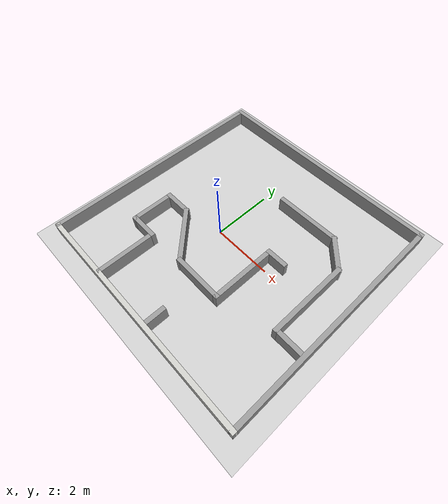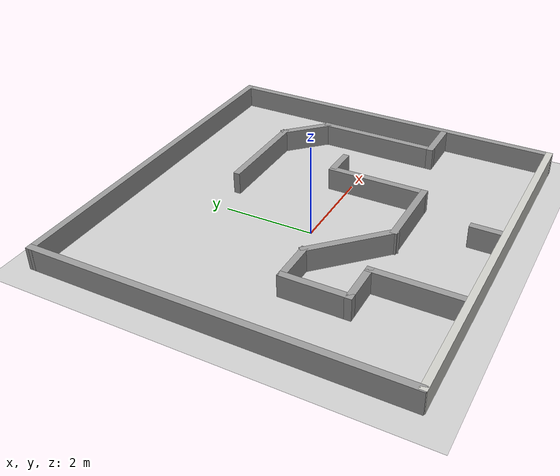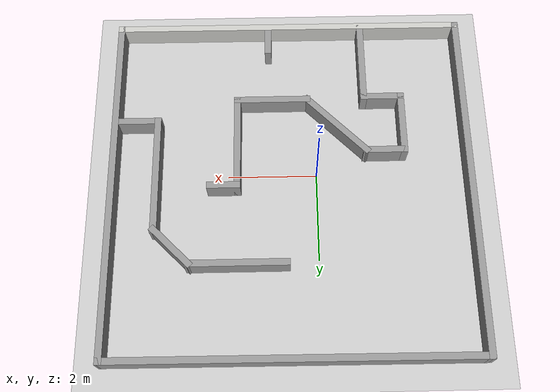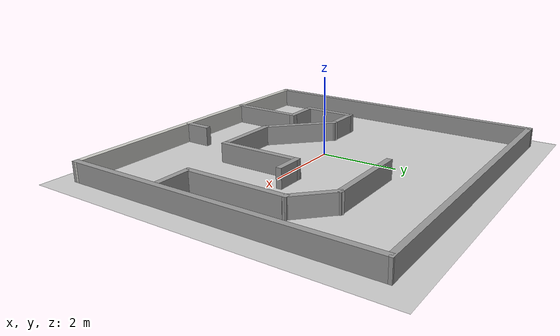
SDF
<sdf version="1.6">
 <world name="default">
  <light name="sun" type="directional">
   <pose>0 0 10 0 -0 0</pose>
   <diffuse>0.8 0.8 0.8 1</diffuse>
   <specular>0.2 0.2 0.2 1</specular>
   <attenuation>
    <range>1000</range>
    <constant>0.9</constant>
    <linear>0.01</linear>
    <quadratic>0.001</quadratic>
   </attenuation>
   <direction>-0.5 0.1 -0.9</direction>
  </light>
  <model name="ground_plane">
   <static>1</static>
   <link name="link">
    <collision name="collision">
     <geometry><plane><normal>0 0 1</normal><size>100 100</size></plane></geometry>
     <surface>
      <contact><collide_bitmask>65535</collide_bitmask></contact>
      <friction><ode><mu>100</mu><mu2>50</mu2></ode></friction>
     </surface>
    </collision>
    <visual name="visual">
     <cast_shadows>0</cast_shadows>
     <geometry><plane><normal>0 0 1</normal><size>100 100</size></plane></geometry>
     <material>
      <script><uri>file://media/materials/scripts/gazebo.material</uri><name>Gazebo/Grey</name></script>
     </material>
    </visual>
   </link>
  </model>
  <gravity>0 0 -9.8</gravity>
  <magnetic_field>6e-06 2.3e-05 -4.2e-05</magnetic_field>
  <atmosphere type="adiabatic"/>
  <physics name="default_physics" default="0" type="ode">
   <max_step_size>0.001</max_step_size>
   <real_time_factor>1</real_time_factor>
   <real_time_update_rate>1000</real_time_update_rate>
  </physics>
  <scene><ambient>0.4 0.4 0.4 1</ambient><background>0.7 0.7 0.7 1</background><shadows>1</shadows></scene>
  <audio><device>default</device></audio>
  <spherical_coordinates>
   <surface_model>EARTH_WGS84</surface_model>
   <latitude_deg>0</latitude_deg>
   <longitude_deg>0</longitude_deg>
   <elevation>0</elevation>
   <heading_deg>0</heading_deg>
  </spherical_coordinates>
  <model name="Untitled_1">
   <pose>0.5725 0.246561 0 0 -0 0</pose>
   <link name="Wall_16">
    <collision name="Wall_16_Collision">
     <geometry><box><size>8.10003 0.15 0.5</size></box></geometry>
     <pose>0 0 0.25 0 -0 0</pose>
    </collision>
    <visual name="Wall_16_Visual">
     <pose>0 0 0.25 0 -0 0</pose>
     <geometry><box><size>8.10003 0.15 0.5</size></box></geometry>
     <material>
      <script><uri>file://media/materials/scripts/gazebo.material</uri><name>Gazebo/CeilingTiled</name></script>
      <ambient>1 1 1 1</ambient>
     </material>
     <meta><layer>0</layer></meta>
    </visual>
    <pose>0.0135 -3.93156 0 0 -0 -0.002516</pose>
   </link>
   <link name="Wall_17">
    <collision name="Wall_17_Collision">
     <geometry><box><size>7.9998 0.15 0.5</size></box></geometry>
     <pose>0 0 0.25 0 -0 0</pose>
    </collision>
    <visual name="Wall_17_Visual">
     <pose>0 0 0.25 0 -0 0</pose>
     <geometry><box><size>7.9998 0.15 0.5</size></box></geometry>
     <material>
      <script><uri>file://media/materials/scripts/gazebo.material</uri><name>Gazebo/Grey</name></script>
      <ambient>1 1 1 1</ambient>
     </material>
     <meta><layer>0</layer></meta>
    </visual>
    <pose>3.9885 -0.016561 0 0 -0 1.5708</pose>
   </link>
   <link name="Wall_18">
    <collision name="Wall_18_Collision">
     <geometry><box><size>8.12707 0.15 0.5</size></box></geometry>
     <pose>0 0 0.25 0 -0 0</pose>
    </collision>
    <visual name="Wall_18_Visual">
     <pose>0 0 0.25 0 -0 0</pose>
     <geometry><box><size>8.12707 0.15 0.5</size></box></geometry>
     <material>
      <script><uri>file://media/materials/scripts/gazebo.material</uri><name>Gazebo/Grey</name></script>
      <ambient>1 1 1 1</ambient>
     </material>
     <meta><layer>0</layer></meta>
    </visual>
    <pose>0 3.92494 0 0 -0 3.13746</pose>
   </link>
   <link name="Wall_19">
    <collision name="Wall_19_Collision">
     <geometry><box><size>8 0.15 0.5</size></box></geometry>
     <pose>0 0 0.25 0 -0 0</pose>
    </collision>
    <visual name="Wall_19_Visual">
     <pose>0 0 0.25 0 -0 0</pose>
     <geometry><box><size>8 0.15 0.5</size></box></geometry>
     <material>
      <script><uri>file://media/materials/scripts/gazebo.material</uri><name>Gazebo/Grey</name></script>
      <ambient>1 1 1 1</ambient>
     </material>
     <meta><layer>0</layer></meta>
    </visual>
    <pose>-3.9885 0.016439 0 0 -0 -1.5708</pose>
   </link>
   <link name="Wall_21">
    <collision name="Wall_21_Collision">
     <geometry><box><size>2 0.15 0.5</size></box></geometry>
     <pose>0 0 0.25 0 -0 0</pose>
    </collision>
    <visual name="Wall_21_Visual">
     <pose>0 0 0.25 0 -0 0</pose>
     <geometry><box><size>2 0.15 0.5</size></box></geometry>
     <material>
      <script><uri>file://media/materials/scripts/gazebo.material</uri><name>Gazebo/Grey</name></script>
      <ambient>1 1 1 1</ambient>
     </material>
     <meta><layer>0</layer></meta>
    </visual>
    <pose>-1.6995 -2.94456 0 0 -0 1.5708</pose>
   </link>
   <link name="Wall_22">
    <collision name="Wall_22_Collision">
     <geometry><box><size>1 0.15 0.5</size></box></geometry>
     <pose>0 0 0.25 0 -0 0</pose>
    </collision>
    <visual name="Wall_22_Visual">
     <pose>0 0 0.25 0 -0 0</pose>
     <geometry><box><size>1 0.15 0.5</size></box></geometry>
     <material>
      <script><uri>file://media/materials/scripts/gazebo.material</uri><name>Gazebo/Grey</name></script>
      <ambient>1 1 1 1</ambient>
     </material>
     <meta><layer>0</layer></meta>
    </visual>
    <pose>-2.1245 -2.01956 0 0 -0 3.14159</pose>
   </link>
   <link name="Wall_23">
    <collision name="Wall_23_Collision">
     <geometry><box><size>1.5 0.15 0.5</size></box></geometry>
     <pose>0 0 0.25 0 -0 0</pose>
    </collision>
    <visual name="Wall_23_Visual">
     <pose>0 0 0.25 0 -0 0</pose>
     <geometry><box><size>1.5 0.15 0.5</size></box></geometry>
     <material>
      <script><uri>file://media/materials/scripts/gazebo.material</uri><name>Gazebo/Grey</name></script>
      <ambient>1 1 1 1</ambient>
     </material>
     <meta><layer>0</layer></meta>
    </visual>
    <pose>-2.5495 -1.34456 0 0 -0 1.5708</pose>
   </link>
   <link name="Wall_24">
    <collision name="Wall_24_Collision">
     <geometry><box><size>0.999503 0.15 0.5</size></box></geometry>
     <pose>0 0 0.25 0 -0 0</pose>
    </collision>
    <visual name="Wall_24_Visual">
     <pose>0 0 0.25 0 -0 0</pose>
     <geometry><box><size>0.999503 0.15 0.5</size></box></geometry>
     <material>
      <script><uri>file://media/materials/scripts/gazebo.material</uri><name>Gazebo/Grey</name></script>
      <ambient>1 1 1 1</ambient>
     </material>
     <meta><layer>0</layer></meta>
    </visual>
    <pose>-2.1245 -0.669561 0 0 -0 0</pose>
   </link>
   <link name="Wall_25">
    <collision name="Wall_25_Collision">
     <geometry><box><size>2.0005 0.15 0.5</size></box></geometry>
     <pose>0 0 0.25 0 -0 0</pose>
    </collision>
    <visual name="Wall_25_Visual">
     <pose>0 0 0.25 0 -0 0</pose>
     <geometry><box><size>2.0005 0.15 0.5</size></box></geometry>
     <material>
      <script><uri>file://media/materials/scripts/gazebo.material</uri><name>Gazebo/Grey</name></script>
      <ambient>1 1 1 1</ambient>
     </material>
     <meta><layer>0</layer></meta>
    </visual>
    <pose>-1.045 -1.32356 0 0 -0 -0.785016</pose>
   </link>
   <link name="Wall_26">
    <collision name="Wall_26_Collision">
     <geometry><box><size>1.75 0.15 0.5</size></box></geometry>
     <pose>0 0 0.25 0 -0 0</pose>
    </collision>
    <visual name="Wall_26_Visual">
     <pose>0 0 0.25 0 -0 0</pose>
     <geometry><box><size>1.75 0.15 0.5</size></box></geometry>
     <material>
      <script><uri>file://media/materials/scripts/gazebo.material</uri><name>Gazebo/Grey</name></script>
      <ambient>1 1 1 1</ambient>
     </material>
     <meta><layer>0</layer></meta>
    </visual>
    <pose>0.4095 -1.97756 0 0 -0 0</pose>
   </link>
   <link name="Wall_27">
    <collision name="Wall_27_Collision">
     <geometry><box><size>2.25 0.15 0.5</size></box></geometry>
     <pose>0 0 0.25 0 -0 0</pose>
    </collision>
    <visual name="Wall_27_Visual">
     <pose>0 0 0.25 0 -0 0</pose>
     <geometry><box><size>2.25 0.15 0.5</size></box></geometry>
     <material>
      <script><uri>file://media/materials/scripts/gazebo.material</uri><name>Gazebo/Grey</name></script>
      <ambient>1 1 1 1</ambient>
     </material>
     <meta><layer>0</layer></meta>
    </visual>
    <pose>1.2095 -0.927561 0 0 -0 1.5708</pose>
   </link>
   <link name="Wall_28">
    <collision name="Wall_28_Collision">
     <geometry><box><size>0.75 0.15 0.5</size></box></geometry>
     <pose>0 0 0.25 0 -0 0</pose>
    </collision>
    <visual name="Wall_28_Visual">
     <pose>0 0 0.25 0 -0 0</pose>
     <geometry><box><size>0.75 0.15 0.5</size></box></geometry>
     <material>
      <script><uri>file://media/materials/scripts/gazebo.material</uri><name>Gazebo/Grey</name></script>
      <ambient>1 1 1 1</ambient>
     </material>
     <meta><layer>0</layer></meta>
    </visual>
    <pose>1.5095 0.122439 0 0 -0 0</pose>
   </link>
   <link name="Wall_30">
    <collision name="Wall_30_Collision">
     <geometry><box><size>0.75 0.15 0.5</size></box></geometry>
     <pose>0 0 0.25 0 -0 0</pose>
    </collision>
    <visual name="Wall_30_Visual">
     <pose>0 0 0.25 0 -0 0</pose>
     <geometry><box><size>0.75 0.15 0.5</size></box></geometry>
     <material>
      <script><uri>file://media/materials/scripts/gazebo.material</uri><name>Gazebo/Grey</name></script>
      <ambient>1 1 1 1</ambient>
     </material>
     <meta><layer>0</layer></meta>
    </visual>
    <pose>0.4975 -3.58256 0 0 -0 1.5708</pose>
   </link>
   <link name="Wall_32">
    <collision name="Wall_32_Collision">
     <geometry><box><size>1 0.15 0.5</size></box></geometry>
     <pose>0 0 0.25 0 -0 0</pose>
    </collision>
    <visual name="Wall_32_Visual">
     <pose>0 0 0.25 0 -0 0</pose>
     <geometry><box><size>1 0.15 0.5</size></box></geometry>
     <material>
      <script><uri>file://media/materials/scripts/gazebo.material</uri><name>Gazebo/Grey</name></script>
      <ambient>1 1 1 1</ambient>
     </material>
     <meta><layer>0</layer></meta>
    </visual>
    <pose>3.4385 -1.47656 0 0 -0 3.14159</pose>
   </link>
   <link name="Wall_33">
    <collision name="Wall_33_Collision">
     <geometry><box><size>2.75 0.15 0.5</size></box></geometry>
     <pose>0 0 0.25 0 -0 0</pose>
    </collision>
    <visual name="Wall_33_Visual">
     <pose>0 0 0.25 0 -0 0</pose>
     <geometry><box><size>2.75 0.15 0.5</size></box></geometry>
     <material>
      <script><uri>file://media/materials/scripts/gazebo.material</uri><name>Gazebo/Grey</name></script>
      <ambient>1 1 1 1</ambient>
     </material>
     <meta><layer>0</layer></meta>
    </visual>
    <pose>3.0135 -0.176561 0 0 -0 1.5708</pose>
   </link>
   <link name="Wall_34">
    <collision name="Wall_34_Collision">
     <geometry><box><size>1.25 0.15 0.5</size></box></geometry>
     <pose>0 0 0.25 0 -0 0</pose>
    </collision>
    <visual name="Wall_34_Visual">
     <pose>0 0 0.25 0 -0 0</pose>
     <geometry><box><size>1.25 0.15 0.5</size></box></geometry>
     <material>
      <script><uri>file://media/materials/scripts/gazebo.material</uri><name>Gazebo/Grey</name></script>
      <ambient>1 1 1 1</ambient>
     </material>
     <meta><layer>0</layer></meta>
    </visual>
    <pose>2.6245 1.51244 0 0 -0 2.35619</pose>
   </link>
   <link name="Wall_35">
    <collision name="Wall_35_Collision">
     <geometry><box><size>2.25 0.15 0.5</size></box></geometry>
     <pose>0 0 0.25 0 -0 0</pose>
    </collision>
    <visual name="Wall_35_Visual">
     <pose>0 0 0.25 0 -0 0</pose>
     <geometry><box><size>2.25 0.15 0.5</size></box></geometry>
     <material>
      <script><uri>file://media/materials/scripts/gazebo.material</uri><name>Gazebo/Grey</name></script>
      <ambient>1 1 1 1</ambient>
     </material>
     <meta><layer>0</layer></meta>
    </visual>
    <pose>1.1855 1.90144 0 0 -0 3.14159</pose>
   </link>
   <static>1</static>
  </model>
 </world>
</sdf>
